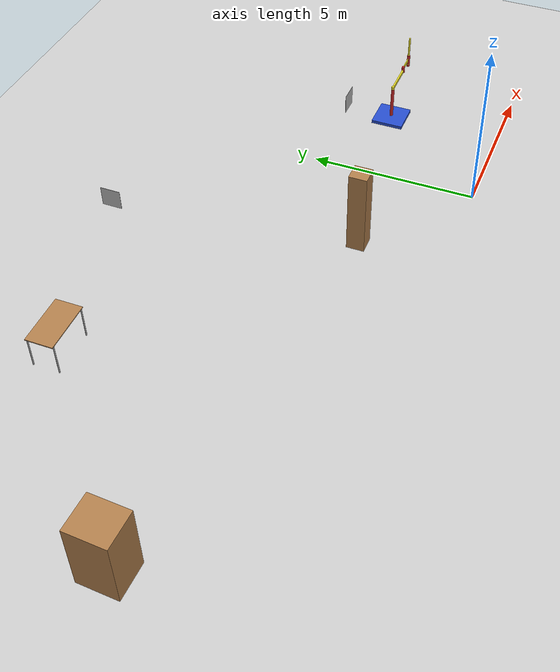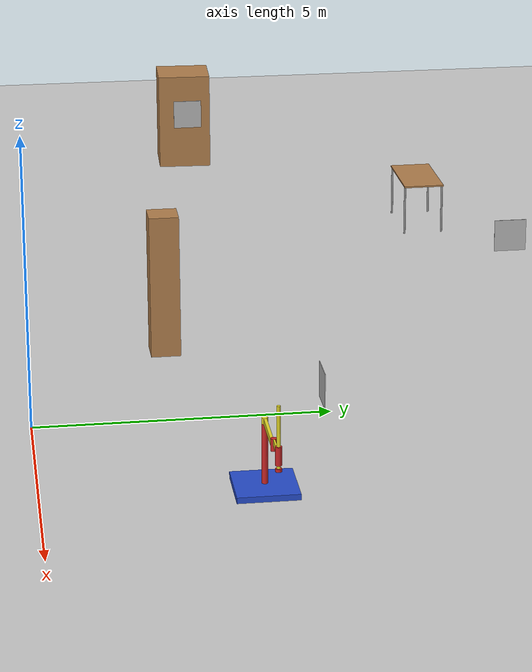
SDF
<sdf version="1.7">
 <world name="default">
  <model name="ground_plane">
   <static>1</static>
   <link name="link">
    <collision name="collision">
     <geometry><plane><normal>0 0 1</normal><size>25 25</size></plane></geometry>
     <surface><friction><ode><mu>100</mu><mu2>50</mu2></ode></friction></surface>
    </collision>
    <visual name="visual">
     <cast_shadows>0</cast_shadows>
     <geometry><plane><normal>0 0 1</normal><size>25 25</size></plane></geometry>
     <material>
      <script><uri>file://media/materials/scripts/gazebo.material</uri><name>Gazebo/Grey</name></script>
     </material>
    </visual>
   </link>
   <link name="startflag">
    <pose>0 0 0.115 0 -0 0</pose>
    <inertial>
     <mass>0.39</mass>
     <inertia><ixx>0.00058</ixx><ixy>0</ixy><ixz>0</ixz><iyy>0.00058</iyy><iyz>0</iyz><izz>0.00019</izz></inertia>
    </inertial>
    <collision name="collision"><geometry><box><size>1 1 0.01</size></box></geometry></collision>
    <visual name="visual">
     <geometry><box><size>1 1 0.01</size></box></geometry>
     <material>
      <script>
       <uri>model://apriltag/materials/scripts</uri>
       <uri>model://apriltag/materials/textures</uri>
       <name>startflag/Diffuse</name>
      </script>
     </material>
    </visual>
   </link>
  </model>
  <model name="unit_box">
   <pose>-14.8777 4.00913 1.01795 1e-06 1e-06 -0.038653</pose>
   <link name="link">
    <inertial>
     <mass>1</mass>
     <inertia>
      <ixx>0.166667</ixx>
      <ixy>0</ixy>
      <ixz>0</ixz>
      <iyy>0.166667</iyy>
      <iyz>0</iyz>
      <izz>0.166667</izz>
     </inertia>
    </inertial>
    <collision name="collision"><geometry><box><size>1 1.11313 2.03591</size></box></geometry></collision>
    <visual name="visual">
     <geometry><box><size>1 1.11313 2.03591</size></box></geometry>
     <material>
      <script><uri>file://media/materials/scripts/gazebo.material</uri><name>Gazebo/Wood</name></script>
     </material>
    </visual>
   </link>
   <static>0</static>
  </model>
  <model name="unit_box_0">
   <pose>-3.15497 2.50232 1.29125 -1e-06 2e-06 0.000794</pose>
   <link name="link">
    <inertial>
     <mass>1</mass>
     <inertia>
      <ixx>0.166667</ixx>
      <ixy>0</ixy>
      <ixz>0</ixz>
      <iyy>0.166667</iyy>
      <iyz>0</iyz>
      <izz>0.166667</izz>
     </inertia>
    </inertial>
    <collision name="collision"><geometry><box><size>0.52404 0.528613 2.5825</size></box></geometry></collision>
    <visual name="visual">
     <geometry><box><size>0.52404 0.528613 2.5825</size></box></geometry>
     <material>
      <script><uri>file://media/materials/scripts/gazebo.material</uri><name>Gazebo/Wood</name></script>
     </material>
    </visual>
   </link>
   <static>0</static>
  </model>
  <model name="static_apriltag_0">
   <link name="link">
    <pose>0 0 0 0 1.57 0</pose>
    <inertial>
     <mass>0.39</mass>
     <inertia><ixx>0.00058</ixx><ixy>0</ixy><ixz>0</ixz><iyy>0.00058</iyy><iyz>0</iyz><izz>0.00019</izz></inertia>
    </inertial>
    <collision name="collision"><geometry><box><size>0.6 0.6 0.01</size></box></geometry></collision>
    <visual name="visual">
     <geometry><box><size>0.6 0.6 0.01</size></box></geometry>
     <material>
      <script>
       <uri>model://apriltag/materials/scripts</uri>
       <uri>model://apriltag/materials/textures</uri>
       <name>apriltag/Diffuse0</name>
      </script>
     </material>
    </visual>
    <gravity>0</gravity>
   </link>
   <pose>-5.15598 9.21333 1.2 0 -0 0</pose>
   <static>0</static>
   <pose>1.90787 0.108649 0 0 -0 0</pose>
  </model>
  <model name="static_apriltag_3">
   <link name="link">
    <pose>0 0 0 -1.57 1.57 -0</pose>
    <inertial>
     <mass>0.39</mass>
     <inertia><ixx>0.00058</ixx><ixy>0</ixy><ixz>0</ixz><iyy>0.00058</iyy><iyz>0</iyz><izz>0.00019</izz></inertia>
    </inertial>
    <collision name="collision"><geometry><box><size>0.6 0.6 0.01</size></box></geometry></collision>
    <visual name="visual">
     <geometry><box><size>0.6 0.6 0.01</size></box></geometry>
     <material>
      <script>
       <uri>model://apriltag/materials/scripts</uri>
       <uri>model://apriltag/materials/textures</uri>
       <name>apriltag/Diffuse3</name>
      </script>
     </material>
    </visual>
    <gravity>0</gravity>
   </link>
   <pose>1.74598 4.5791 1.2 0 -0 0</pose>
   <static>0</static>
   <pose>3.65849 3.02317 0 0 -0 0</pose>
  </model>
  <model name="static_apriltag_7">
   <link name="link">
    <pose>0 0 0 0 1.57 0</pose>
    <inertial>
     <mass>0.39</mass>
     <inertia><ixx>0.00058</ixx><ixy>0</ixy><ixz>0</ixz><iyy>0.00058</iyy><iyz>0</iyz><izz>0.00019</izz></inertia>
    </inertial>
    <collision name="collision"><geometry><box><size>0.6 0.6 0.01</size></box></geometry></collision>
    <visual name="visual">
     <geometry><box><size>0.6 0.6 0.01</size></box></geometry>
     <material>
      <script>
       <uri>model://apriltag/materials/scripts</uri>
       <uri>model://apriltag/materials/textures</uri>
       <name>apriltag/Diffuse7</name>
      </script>
     </material>
    </visual>
    <gravity>0</gravity>
   </link>
   <pose>-14.3301 4.05142 1.2 0 -0 0</pose>
   <static>0</static>
   <pose>3.12393 4.47604 0 0 -0 0</pose>
  </model>
  <model name="simple_arm_clone">
   <link name="arm_base">
    <inertial>
     <pose>0 0 0.00099 0 -0 0</pose>
     <inertia><ixx>1.11</ixx><ixy>0</ixy><ixz>0</ixz><iyy>100.11</iyy><iyz>0</iyz><izz>1.01</izz></inertia>
     <mass>101</mass>
    </inertial>
    <collision name="arm_base_geom">
     <pose>0 0 0.05 0 -0 0</pose>
     <geometry><box><size>1 1 0.1</size></box></geometry>
    </collision>
    <visual name="arm_base_geom_visual">
     <pose>0 0 0.05 0 -0 0</pose>
     <geometry><box><size>1 1 0.1</size></box></geometry>
     <material>
      <script><uri>file://media/materials/scripts/gazebo.material</uri><name>Gazebo/Blue</name></script>
     </material>
    </visual>
    <collision name="arm_base_geom_arm_trunk">
     <pose>0 0 0.6 0 -0 0</pose>
     <geometry><cylinder><radius>0.05</radius><length>1</length></cylinder></geometry>
    </collision>
    <visual name="arm_base_geom_arm_trunk_visual">
     <pose>0 0 0.6 0 -0 0</pose>
     <geometry><cylinder><radius>0.05</radius><length>1</length></cylinder></geometry>
     <material>
      <script><uri>file://media/materials/scripts/gazebo.material</uri><name>Gazebo/Red</name></script>
     </material>
    </visual>
   </link>
   <link name="arm_shoulder_pan">
    <pose>0 0 1.1 0 -0 0</pose>
    <inertial>
     <pose>0.045455 0 0 0 -0 0</pose>
     <inertia><ixx>0.011</ixx><ixy>0</ixy><ixz>0</ixz><iyy>0.0225</iyy><iyz>0</iyz><izz>0.0135</izz></inertia>
     <mass>1.1</mass>
    </inertial>
    <collision name="arm_shoulder_pan_geom">
     <pose>0 0 0.05 0 -0 0</pose>
     <geometry><cylinder><radius>0.05</radius><length>0.1</length></cylinder></geometry>
    </collision>
    <visual name="arm_shoulder_pan_geom_visual">
     <pose>0 0 0.05 0 -0 0</pose>
     <geometry><cylinder><radius>0.05</radius><length>0.1</length></cylinder></geometry>
     <material>
      <script><uri>file://media/materials/scripts/gazebo.material</uri><name>Gazebo/Yellow</name></script>
     </material>
    </visual>
    <collision name="arm_shoulder_pan_geom_arm_shoulder">
     <pose>0.55 0 0.05 0 -0 0</pose>
     <geometry><box><size>1 0.05 0.1</size></box></geometry>
    </collision>
    <visual name="arm_shoulder_pan_geom_arm_shoulder_visual">
     <pose>0.55 0 0.05 0 -0 0</pose>
     <geometry><box><size>1 0.05 0.1</size></box></geometry>
     <material>
      <script><uri>file://media/materials/scripts/gazebo.material</uri><name>Gazebo/Yellow</name></script>
     </material>
    </visual>
   </link>
   <link name="arm_elbow_pan">
    <pose>1.05 0 1.1 0 -0 0</pose>
    <inertial>
     <pose>0.0875 0 0.083333 0 -0 0</pose>
     <inertia>
      <ixx>0.031</ixx>
      <ixy>0</ixy>
      <ixz>0.005</ixz>
      <iyy>0.07275</iyy>
      <iyz>0</iyz>
      <izz>0.04475</izz>
     </inertia>
     <mass>1.2</mass>
    </inertial>
    <collision name="arm_elbow_pan_geom">
     <pose>0 0 0.1 0 -0 0</pose>
     <geometry><cylinder><radius>0.05</radius><length>0.2</length></cylinder></geometry>
    </collision>
    <visual name="arm_elbow_pan_geom_visual">
     <pose>0 0 0.1 0 -0 0</pose>
     <geometry><cylinder><radius>0.05</radius><length>0.2</length></cylinder></geometry>
     <material>
      <script><uri>file://media/materials/scripts/gazebo.material</uri><name>Gazebo/Red</name></script>
     </material>
    </visual>
    <collision name="arm_elbow_pan_geom_arm_elbow">
     <pose>0.3 0 0.15 0 -0 0</pose>
     <geometry><box><size>0.5 0.03 0.1</size></box></geometry>
    </collision>
    <visual name="arm_elbow_pan_geom_arm_elbow_visual">
     <pose>0.3 0 0.15 0 -0 0</pose>
     <geometry><box><size>0.5 0.03 0.1</size></box></geometry>
     <material>
      <script><uri>file://media/materials/scripts/gazebo.material</uri><name>Gazebo/Yellow</name></script>
     </material>
    </visual>
    <collision name="arm_elbow_pan_geom_arm_wrist">
     <pose>0.55 0 0.15 0 -0 0</pose>
     <geometry><cylinder><radius>0.05</radius><length>0.3</length></cylinder></geometry>
    </collision>
    <visual name="arm_elbow_pan_geom_arm_wrist_visual">
     <pose>0.55 0 0.15 0 -0 0</pose>
     <geometry><cylinder><radius>0.05</radius><length>0.3</length></cylinder></geometry>
     <material>
      <script><uri>file://media/materials/scripts/gazebo.material</uri><name>Gazebo/Red</name></script>
     </material>
    </visual>
   </link>
   <link name="arm_wrist_lift">
    <pose>1.6 0 1.05 0 -0 0</pose>
    <inertial>
     <inertia><ixx>0.01</ixx><ixy>0</ixy><ixz>0</ixz><iyy>0.01</iyy><iyz>0</iyz><izz>0.001</izz></inertia>
     <mass>0.1</mass>
    </inertial>
    <collision name="arm_wrist_lift_geom">
     <pose>0 0 0.5 0 -0 0</pose>
     <geometry><cylinder><radius>0.03</radius><length>1</length></cylinder></geometry>
    </collision>
    <visual name="arm_wrist_lift_geom_visual">
     <pose>0 0 0.5 0 -0 0</pose>
     <geometry><cylinder><radius>0.03</radius><length>1</length></cylinder></geometry>
     <material>
      <script><uri>file://media/materials/scripts/gazebo.material</uri><name>Gazebo/Yellow</name></script>
     </material>
    </visual>
   </link>
   <link name="arm_wrist_roll">
    <pose>1.6 0 1 0 -0 0</pose>
    <inertial>
     <inertia><ixx>0.01</ixx><ixy>0</ixy><ixz>0</ixz><iyy>0.01</iyy><iyz>0</iyz><izz>0.001</izz></inertia>
     <mass>0.1</mass>
    </inertial>
    <collision name="arm_wrist_roll_geom">
     <pose>0 0 0.025 0 -0 0</pose>
     <geometry><cylinder><radius>0.05</radius><length>0.05</length></cylinder></geometry>
    </collision>
    <visual name="arm_wrist_roll_geom_visual">
     <pose>0 0 0.025 0 -0 0</pose>
     <geometry><cylinder><radius>0.05</radius><length>0.05</length></cylinder></geometry>
     <material>
      <script><uri>file://media/materials/scripts/gazebo.material</uri><name>Gazebo/Red</name></script>
     </material>
    </visual>
   </link>
   <joint name="arm_shoulder_pan_joint" type="revolute">
    <parent>arm_base</parent>
    <child>arm_shoulder_pan</child>
    <axis>
     <dynamics>
      <damping>1</damping>
      <friction>0</friction>
      <spring_reference>0</spring_reference>
      <spring_stiffness>0</spring_stiffness>
     </dynamics>
     <xyz expressed_in="__model__">0 0 1</xyz>
     <limit><lower>-1e+16</lower><upper>1e+16</upper></limit>
    </axis>
   </joint>
   <joint name="arm_elbow_pan_joint" type="revolute">
    <parent>arm_shoulder_pan</parent>
    <child>arm_elbow_pan</child>
    <axis>
     <dynamics>
      <damping>1</damping>
      <friction>0</friction>
      <spring_reference>0</spring_reference>
      <spring_stiffness>0</spring_stiffness>
     </dynamics>
     <xyz expressed_in="__model__">0 0 1</xyz>
     <limit><lower>-1e+16</lower><upper>1e+16</upper></limit>
    </axis>
   </joint>
   <joint name="arm_wrist_lift_joint" type="prismatic">
    <parent>arm_elbow_pan</parent>
    <child>arm_wrist_lift</child>
    <axis>
     <dynamics>
      <damping>1</damping>
      <friction>0</friction>
      <spring_reference>0</spring_reference>
      <spring_stiffness>0</spring_stiffness>
     </dynamics>
     <limit><lower>-0.8</lower><upper>0.1</upper></limit>
     <xyz expressed_in="__model__">0 0 1</xyz>
    </axis>
   </joint>
   <joint name="arm_wrist_roll_joint" type="revolute">
    <parent>arm_wrist_lift</parent>
    <child>arm_wrist_roll</child>
    <axis>
     <dynamics>
      <damping>1</damping>
      <friction>0</friction>
      <spring_reference>0</spring_reference>
      <spring_stiffness>0</spring_stiffness>
     </dynamics>
     <limit><lower>-2.99999</lower><upper>2.99999</upper></limit>
     <xyz expressed_in="__model__">0 0 1</xyz>
    </axis>
   </joint>
   <pose>2.92552 3.50324 -0 0 -0 -0.001438</pose>
  </model>
  <model name="table_clone">
   <static>0</static>
   <link name="link">
    <collision name="surface">
     <pose>0 0 1 0 -0 0</pose>
     <geometry><box><size>1.5 0.8 0.03</size></box></geometry>
     <surface><friction><ode><mu>0.6</mu><mu2>0.6</mu2></ode></friction></surface>
    </collision>
    <visual name="visual1">
     <pose>0 0 1 0 -0 0</pose>
     <geometry><box><size>1.5 0.8 0.03</size></box></geometry>
     <material>
      <script><uri>file://media/materials/scripts/gazebo.material</uri><name>Gazebo/Wood</name></script>
     </material>
    </visual>
    <collision name="front_left_leg">
     <pose>0.68 0.38 0.5 0 -0 0</pose>
     <geometry><cylinder><radius>0.02</radius><length>1</length></cylinder></geometry>
    </collision>
    <visual name="front_left_leg">
     <pose>0.68 0.38 0.5 0 -0 0</pose>
     <geometry><cylinder><radius>0.02</radius><length>1</length></cylinder></geometry>
     <material>
      <script><uri>file://media/materials/scripts/gazebo.material</uri><name>Gazebo/Grey</name></script>
     </material>
    </visual>
    <collision name="front_right_leg">
     <pose>0.68 -0.38 0.5 0 -0 0</pose>
     <geometry><cylinder><radius>0.02</radius><length>1</length></cylinder></geometry>
    </collision>
    <visual name="front_right_leg">
     <pose>0.68 -0.38 0.5 0 -0 0</pose>
     <geometry><cylinder><radius>0.02</radius><length>1</length></cylinder></geometry>
     <material>
      <script><uri>file://media/materials/scripts/gazebo.material</uri><name>Gazebo/Grey</name></script>
     </material>
    </visual>
    <collision name="back_right_leg">
     <pose>-0.68 -0.38 0.5 0 -0 0</pose>
     <geometry><cylinder><radius>0.02</radius><length>1</length></cylinder></geometry>
    </collision>
    <visual name="back_right_leg">
     <pose>-0.68 -0.38 0.5 0 -0 0</pose>
     <geometry><cylinder><radius>0.02</radius><length>1</length></cylinder></geometry>
     <material>
      <script><uri>file://media/materials/scripts/gazebo.material</uri><name>Gazebo/Grey</name></script>
     </material>
    </visual>
    <collision name="back_left_leg">
     <pose>-0.68 0.38 0.5 0 -0 0</pose>
     <geometry><cylinder><radius>0.02</radius><length>1</length></cylinder></geometry>
    </collision>
    <visual name="back_left_leg">
     <pose>-0.68 0.38 0.5 0 -0 0</pose>
     <geometry><cylinder><radius>0.02</radius><length>1</length></cylinder></geometry>
     <material>
      <script><uri>file://media/materials/scripts/gazebo.material</uri><name>Gazebo/Grey</name></script>
     </material>
    </visual>
    <inertial>
     <inertia><ixx>1</ixx><ixy>0</ixy><ixz>0</ixz><iyy>1</iyy><iyz>0</iyz><izz>1</izz></inertia>
     <mass>1</mass>
    </inertial>
   </link>
   <pose>-9.7514 8.31723 -1e-05 0 -0 0.009184</pose>
  </model>
 </world>
</sdf>
